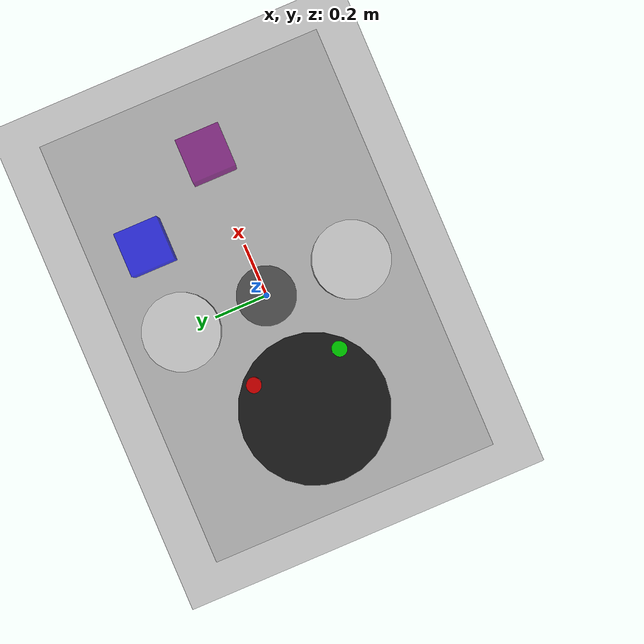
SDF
<?xml version="1.0" ?>
<sdf version="1.6">
  <world name="posha_kitchen">

    <!-- Global lighting -->
    <include>
      <uri>model://sun</uri>
    </include>

    <!-- Ground plane -->
    <include>
      <uri>model://ground_plane</uri>
    </include>

    <!-- Kitchen table -->
    <model name="kitchen_table">
      <pose>0 0 0.5 0 0 0</pose>
      <link name="link">
        <visual name="visual">
          <geometry>
            <box>
              <size>1.5 1.0 0.05</size>
            </box>
          </geometry>
          <material>
            <ambient>0.7 0.7 0.7 1</ambient>
            <diffuse>0.7 0.7 0.7 1</diffuse>
            <specular>0.1 0.1 0.1 1</specular>
          </material>
        </visual>
        <collision name="collision">
          <geometry>
            <box>
              <size>1.5 1.0 0.05</size>
            </box>
          </geometry>
        </collision>
      </link>
    </model>

    <!-- Macro Container 1 -->
    <model name="container_1">
      <pose>0.3 0.3 0.625 0 0 0</pose>
      <link name="link">
        <visual name="visual">
          <geometry>
            <box>
              <size>0.15 0.15 0.2</size>
            </box>
          </geometry>
          <material>
            <ambient>0.0 0.0 1.0 0.7</ambient>
            <diffuse>0.0 0.0 1.0 0.7</diffuse>
          </material>
        </visual>
        <collision name="collision">
          <geometry>
            <box>
              <size>0.15 0.15 0.2</size>
            </box>
          </geometry>
        </collision>
      </link>
    </model>

    <!-- Macro Container 5 -->
    <model name="container_5">
      <pose>0.5 0.0 0.625 0 0 0</pose>
      <link name="link">
        <visual name="visual">
          <geometry>
            <box>
              <size>0.15 0.15 0.2</size>
            </box>
          </geometry>
          <material>
            <ambient>0.5 0.0 0.5 0.7</ambient>
            <diffuse>0.5 0.0 0.5 0.7</diffuse>
          </material>
        </visual>
        <collision name="collision">
          <geometry>
            <box>
              <size>0.15 0.15 0.2</size>
            </box>
          </geometry>
        </collision>
      </link>
    </model>

    <!-- Pan 1 -->
    <model name="pan_1">
      <pose>0.0 -0.3 0.625 0 0 0</pose>
      <link name="link">
        <visual name="visual">
          <geometry>
            <cylinder>
              <radius>0.13</radius>
              <length>0.1</length>
            </cylinder>
          </geometry>
          <material>
            <ambient>0.8 0.8 0.8 1</ambient>
            <diffuse>0.8 0.8 0.8 1</diffuse>
            <specular>0.9 0.9 0.9 1</specular>
          </material>
        </visual>
        <collision name="collision">
          <geometry>
            <cylinder>
              <radius>0.13</radius>
              <length>0.1</length>
            </cylinder>
          </geometry>
        </collision>
      </link>
    </model>

    <!-- Pan 2 -->
    <model name="pan_2">
      <pose>0.0 0.3 0.625 0 0 0</pose>
      <link name="link">
        <visual name="visual">
          <geometry>
            <cylinder>
              <radius>0.13</radius>
              <length>0.1</length>
            </cylinder>
          </geometry>
          <material>
            <ambient>0.8 0.8 0.8 1</ambient>
            <diffuse>0.8 0.8 0.8 1</diffuse>
            <specular>0.9 0.9 0.9 1</specular>
          </material>
        </visual>
        <collision name="collision">
          <geometry>
            <cylinder>
              <radius>0.13</radius>
              <length>0.1</length>
            </cylinder>
          </geometry>
        </collision>
      </link>
    </model>

    <!-- Spice Rack -->
    <model name="spice_rack">
      <pose>-0.4 0.0 0.625 0 0 0</pose>
      <link name="link">
        <visual name="visual">
          <geometry>
            <cylinder>
              <radius>0.25</radius>
              <length>0.05</length>
            </cylinder>
          </geometry>
          <material>
            <ambient>0.1 0.1 0.1 1</ambient>
            <diffuse>0.1 0.1 0.1 1</diffuse>
          </material>
        </visual>
        <collision name="collision">
          <geometry>
            <cylinder>
              <radius>0.25</radius>
              <length>0.05</length>
            </cylinder>
          </geometry>
        </collision>
      </link>
    </model>

    <!-- Spice Pod 1 -->
    <model name="spice_pod_1">
      <pose>-0.25 0.15 0.685 0 0 0</pose>
      <link name="link">
        <visual name="visual">
          <geometry>
            <cylinder>
              <radius>0.025</radius>
              <length>0.08</length>
            </cylinder>
          </geometry>
          <material>
            <ambient>1.0 0.0 0.0 0.8</ambient>
            <diffuse>1.0 0.0 0.0 0.8</diffuse>
          </material>
        </visual>
        <collision name="collision">
          <geometry>
            <cylinder>
              <radius>0.025</radius>
              <length>0.08</length>
            </cylinder>
          </geometry>
        </collision>
      </link>
    </model>

    <!-- Spice Pod 19 -->
    <model name="spice_pod_19">
      <pose>-0.25 -0.15 0.685 0 0 0</pose>
      <link name="link">
        <visual name="visual">
          <geometry>
            <cylinder>
              <radius>0.025</radius>
              <length>0.08</length>
            </cylinder>
          </geometry>
          <material>
            <ambient>0.0 1.0 0.0 0.8</ambient>
            <diffuse>0.0 1.0 0.0 0.8</diffuse>
          </material>
        </visual>
        <collision name="collision">
          <geometry>
            <cylinder>
              <radius>0.025</radius>
              <length>0.08</length>
            </cylinder>
          </geometry>
        </collision>
      </link>
    </model>

    <!-- Simple Robot Base -->
    <model name="robot_base">
      <pose>0 0 0.5 0 0 0</pose>
      <link name="link">
        <visual name="visual">
          <geometry>
            <cylinder>
              <radius>0.1</radius>
              <length>0.2</length>
            </cylinder>
          </geometry>
          <material>
            <ambient>0.3 0.3 0.3 1</ambient>
            <diffuse>0.3 0.3 0.3 1</diffuse>
          </material>
        </visual>
      </link>
    </model>

  </world>
</sdf>
